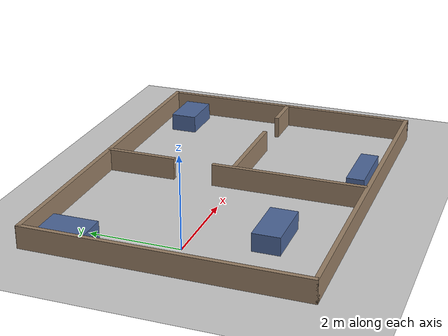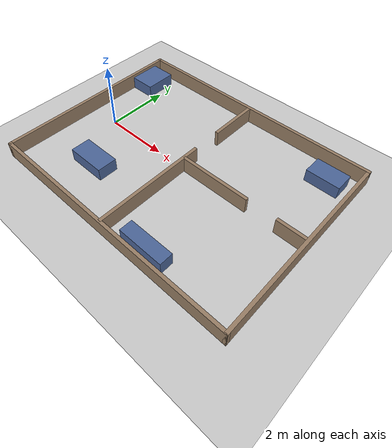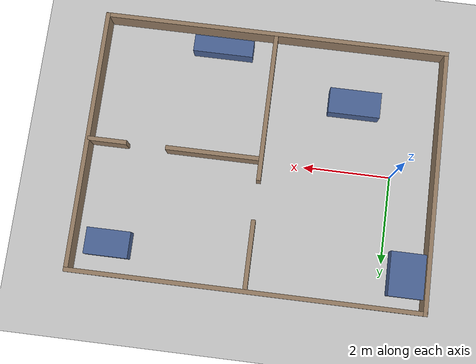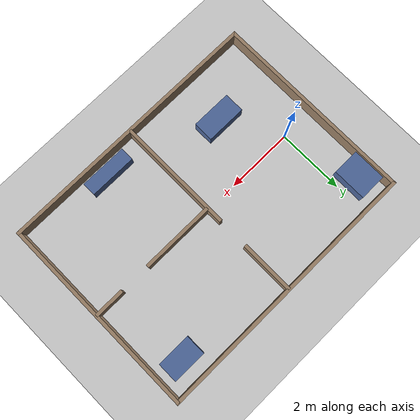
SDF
<?xml version="1.0" ?>
<!-- Exploration test flat (generated 2026-10-26): 8 x 6 m, three rooms joined by 0.9 m doorways, furniture.
     Robot starts at (0, 0) in the left room. Used by tools/explore_sim.sh. -->
<sdf version="1.5">
  <world name="default">
    <include><uri>model://sun</uri></include>
    <include><uri>model://ground_plane</uri></include>
    <model name="outer_s"><static>true</static><pose>3.000 -3.000 0.250 0 0 0</pose>
      <link name="link">
        <collision name="c"><geometry><box><size>8.100 0.100 0.500</size></box></geometry></collision>
        <visual name="v"><geometry><box><size>8.100 0.100 0.500</size></box></geometry>
          <material><ambient>0.6 0.5 0.4 1</ambient><diffuse>0.6 0.5 0.4 1</diffuse></material></visual>
      </link></model>
    <model name="outer_n"><static>true</static><pose>3.000 3.000 0.250 0 0 0</pose>
      <link name="link">
        <collision name="c"><geometry><box><size>8.100 0.100 0.500</size></box></geometry></collision>
        <visual name="v"><geometry><box><size>8.100 0.100 0.500</size></box></geometry>
          <material><ambient>0.6 0.5 0.4 1</ambient><diffuse>0.6 0.5 0.4 1</diffuse></material></visual>
      </link></model>
    <model name="outer_w"><static>true</static><pose>-1.000 0.000 0.250 0 0 0</pose>
      <link name="link">
        <collision name="c"><geometry><box><size>0.100 6.100 0.500</size></box></geometry></collision>
        <visual name="v"><geometry><box><size>0.100 6.100 0.500</size></box></geometry>
          <material><ambient>0.6 0.5 0.4 1</ambient><diffuse>0.6 0.5 0.4 1</diffuse></material></visual>
      </link></model>
    <model name="outer_e"><static>true</static><pose>7.000 0.000 0.250 0 0 0</pose>
      <link name="link">
        <collision name="c"><geometry><box><size>0.100 6.100 0.500</size></box></geometry></collision>
        <visual name="v"><geometry><box><size>0.100 6.100 0.500</size></box></geometry>
          <material><ambient>0.6 0.5 0.4 1</ambient><diffuse>0.6 0.5 0.4 1</diffuse></material></visual>
      </link></model>
    <model name="mid_a"><static>true</static><pose>3.000 -1.250 0.250 0 0 0</pose>
      <link name="link">
        <collision name="c"><geometry><box><size>0.100 3.500 0.500</size></box></geometry></collision>
        <visual name="v"><geometry><box><size>0.100 3.500 0.500</size></box></geometry>
          <material><ambient>0.6 0.5 0.4 1</ambient><diffuse>0.6 0.5 0.4 1</diffuse></material></visual>
      </link></model>
    <model name="mid_b"><static>true</static><pose>3.000 2.200 0.250 0 0 0</pose>
      <link name="link">
        <collision name="c"><geometry><box><size>0.100 1.600 0.500</size></box></geometry></collision>
        <visual name="v"><geometry><box><size>0.100 1.600 0.500</size></box></geometry>
          <material><ambient>0.6 0.5 0.4 1</ambient><diffuse>0.6 0.5 0.4 1</diffuse></material></visual>
      </link></model>
    <model name="right_a"><static>true</static><pose>4.100 0.000 0.250 0 0 0</pose>
      <link name="link">
        <collision name="c"><geometry><box><size>2.200 0.100 0.500</size></box></geometry></collision>
        <visual name="v"><geometry><box><size>2.200 0.100 0.500</size></box></geometry>
          <material><ambient>0.6 0.5 0.4 1</ambient><diffuse>0.6 0.5 0.4 1</diffuse></material></visual>
      </link></model>
    <model name="right_b"><static>true</static><pose>6.550 0.000 0.250 0 0 0</pose>
      <link name="link">
        <collision name="c"><geometry><box><size>0.900 0.100 0.500</size></box></geometry></collision>
        <visual name="v"><geometry><box><size>0.900 0.100 0.500</size></box></geometry>
          <material><ambient>0.6 0.5 0.4 1</ambient><diffuse>0.6 0.5 0.4 1</diffuse></material></visual>
      </link></model>
    <model name="table"><static>true</static><pose>1.000 -1.600 0.200 0 0 0</pose>
      <link name="link">
        <collision name="c"><geometry><box><size>1.200 0.600 0.400</size></box></geometry></collision>
        <visual name="v"><geometry><box><size>1.200 0.600 0.400</size></box></geometry>
          <material><ambient>0.3 0.4 0.6 1</ambient><diffuse>0.3 0.4 0.6 1</diffuse></material></visual>
      </link></model>
    <model name="cupboard"><static>true</static><pose>-0.550 2.200 0.200 0 0 0</pose>
      <link name="link">
        <collision name="c"><geometry><box><size>0.800 1.000 0.400</size></box></geometry></collision>
        <visual name="v"><geometry><box><size>0.800 1.000 0.400</size></box></geometry>
          <material><ambient>0.3 0.4 0.6 1</ambient><diffuse>0.3 0.4 0.6 1</diffuse></material></visual>
      </link></model>
    <model name="desk"><static>true</static><pose>6.200 2.300 0.200 0 0 0</pose>
      <link name="link">
        <collision name="c"><geometry><box><size>1.000 0.600 0.400</size></box></geometry></collision>
        <visual name="v"><geometry><box><size>1.000 0.600 0.400</size></box></geometry>
          <material><ambient>0.3 0.4 0.6 1</ambient><diffuse>0.3 0.4 0.6 1</diffuse></material></visual>
      </link></model>
    <model name="shelf"><static>true</static><pose>4.200 -2.600 0.200 0 0 0</pose>
      <link name="link">
        <collision name="c"><geometry><box><size>1.400 0.400 0.400</size></box></geometry></collision>
        <visual name="v"><geometry><box><size>1.400 0.400 0.400</size></box></geometry>
          <material><ambient>0.3 0.4 0.6 1</ambient><diffuse>0.3 0.4 0.6 1</diffuse></material></visual>
      </link></model>
  </world>
</sdf>
